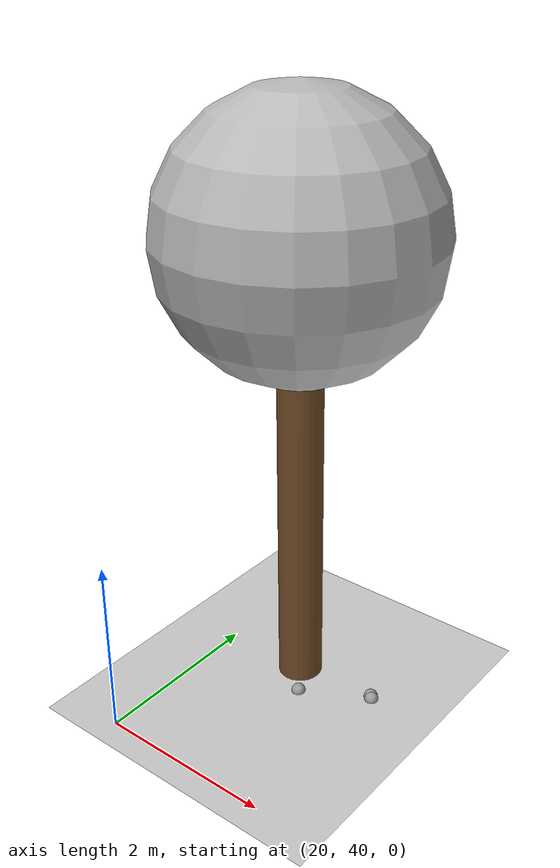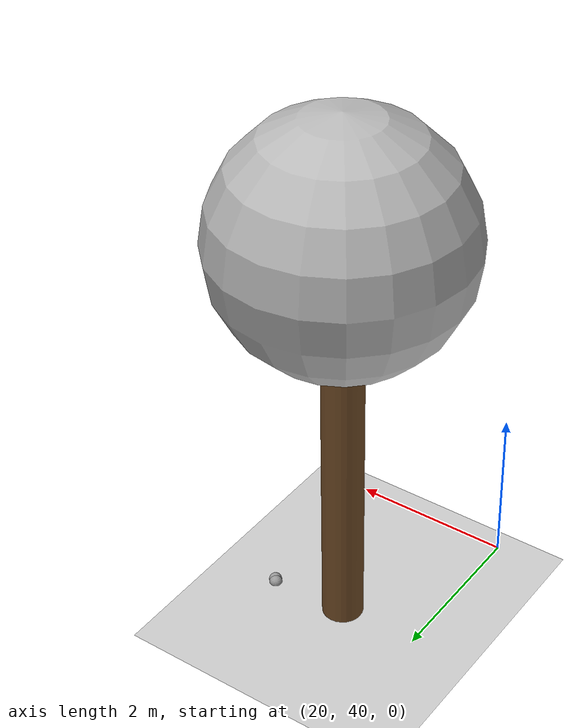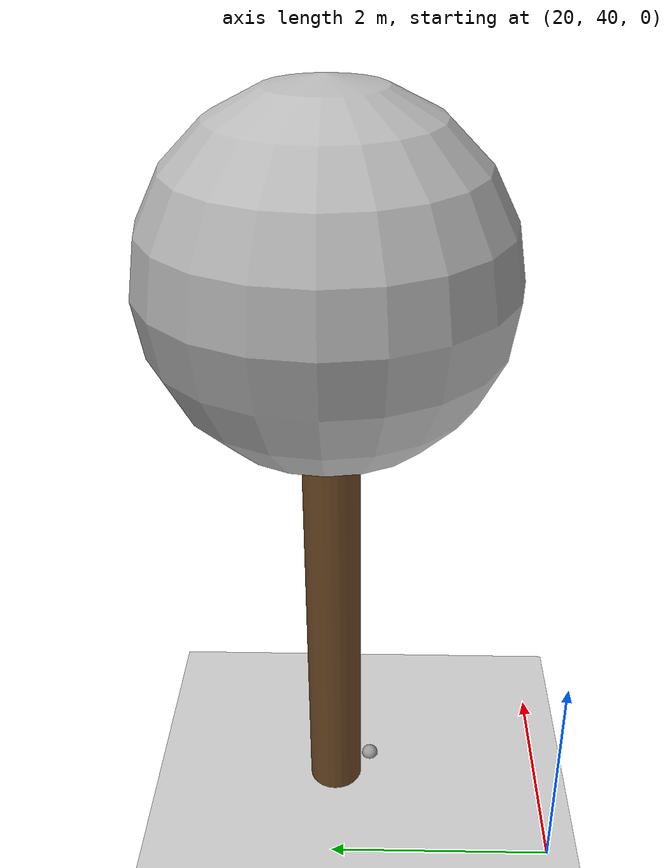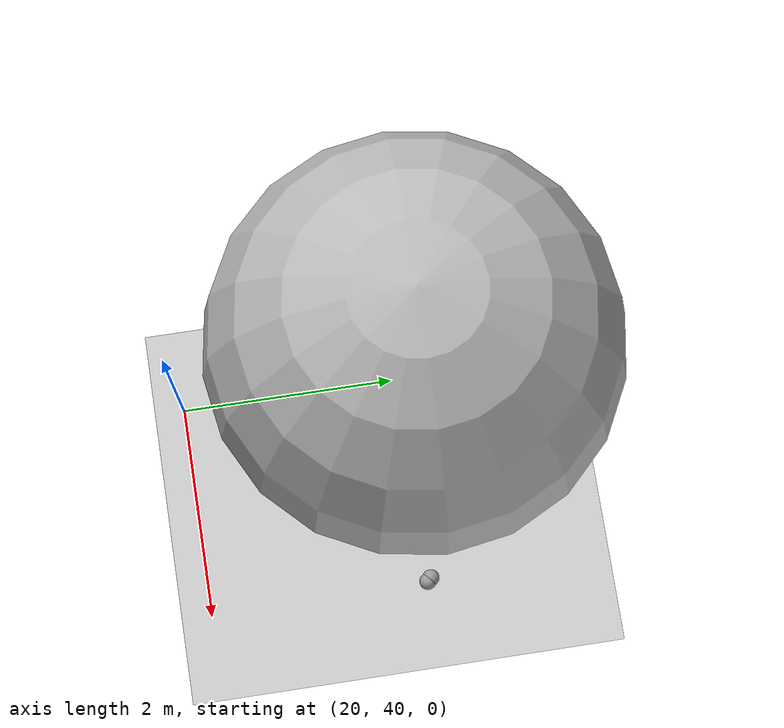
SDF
<sdf version="1.7">
 <world name="default">
  <model name="ground_plane">
   <static>1</static>
   <link name="link">
    <collision name="collision">
     <geometry><plane><normal>0 0 1</normal><size>100 100</size></plane></geometry>
     <surface>
      <contact><collide_bitmask>65535</collide_bitmask></contact>
      <friction><ode><mu>100</mu><mu2>50</mu2></ode></friction>
     </surface>
    </collision>
    <visual name="visual">
     <cast_shadows>0</cast_shadows>
     <geometry><plane><normal>0 0 1</normal><size>100 100</size></plane></geometry>
     <material>
      <script><uri>file://media/materials/scripts/gazebo.material</uri><name>Gazebo/Grey</name></script>
     </material>
    </visual>
   </link>
  </model>
  <model name="tree_simple_13">
   <static>1</static>
   <link name="link">
    <pose>0 0 0.1 0 -0 0</pose>
    <inertial>
     <mass>666</mass>
     <inertia>
      <ixx>0.0861167</ixx>
      <ixy>0</ixy>
      <ixz>0</ixz>
      <iyy>0.0861167</iyy>
      <iyz>0</iyz>
      <izz>0.0861167</izz>
     </inertia>
    </inertial>
    <collision name="collision_trunk">
     <pose>0 0 2 0 -0 0</pose>
     <geometry><cylinder><radius>0.25</radius><length>4</length></cylinder></geometry>
     <surface>
      <contact>
       <poissons_ratio>0.347</poissons_ratio>
       <elastic_modulus>8.8e+09</elastic_modulus>
       <ode><kp>100000</kp><kd>100</kd><max_vel>100</max_vel><min_depth>0.001</min_depth></ode>
      </contact>
      <friction>
       <torsional>
        <coefficient>1</coefficient>
        <use_patch_radius>0</use_patch_radius>
        <surface_radius>0.01</surface_radius>
       </torsional>
      </friction>
     </surface>
    </collision>
    <collision name="collision_treetop">
     <pose>0 0 5.2 0 -0 0</pose>
     <geometry><sphere><radius>1.5</radius></sphere></geometry>
     <surface>
      <contact>
       <poissons_ratio>0.347</poissons_ratio>
       <elastic_modulus>8.8e+09</elastic_modulus>
       <ode><kp>100000</kp><kd>100</kd><max_vel>100</max_vel><min_depth>0.001</min_depth></ode>
      </contact>
      <friction>
       <torsional>
        <coefficient>1</coefficient>
        <use_patch_radius>0</use_patch_radius>
        <surface_radius>0.01</surface_radius>
       </torsional>
      </friction>
     </surface>
    </collision>
    <visual name="trunk">
     <pose>0 0 2 0 -0 0</pose>
     <geometry><cylinder><radius>0.25</radius><length>4</length></cylinder></geometry>
     <material>
      <script>
       <uri>model://tree_simple/scripts</uri>
       <uri>model://tree_simple/materials/textures</uri>
       <name>TreeSimple/Trunk</name>
      </script>
     </material>
    </visual>
    <visual name="treetop">
     <pose>0 0 5.2 0 -0 0</pose>
     <geometry><sphere><radius>1.5</radius></sphere></geometry>
     <material>
      <script>
       <uri>model://tree_simple/scripts</uri>
       <uri>model://tree_simple/materials/textures</uri>
       <name>TreeSimple/Treetop</name>
      </script>
     </material>
    </visual>
   </link>
   <pose>21 42 -0.1 0 -0 0</pose>
  </model>
  <model name="seed_black_2">
   <link name="link">
    <inertial>
     <mass>1</mass>
     <inertia><ixx>0.1</ixx><ixy>0</ixy><ixz>0</ixz><iyy>0.1</iyy><iyz>0</iyz><izz>0.1</izz></inertia>
    </inertial>
    <visual name="visual">
     <geometry><sphere><radius>0.08</radius></sphere></geometry>
     <material>
      <script><name>Gazebo/Grey</name><uri>file://media/materials/scripts/gazebo.material</uri></script>
      <shader type="pixel"><normal_map>__default__</normal_map></shader>
      <ambient>0 0 0 1</ambient>
      <diffuse>0.7 0.7 0.7 1</diffuse>
      <specular>0.01 0.01 0.01 1</specular>
      <emissive>0 0 0 1</emissive>
     </material>
    </visual>
    <collision name="collision">
     <geometry><sphere><radius>0.0005</radius></sphere></geometry>
     <surface>
      <friction>
       <ode><mu>1</mu><mu2>1</mu2><fdir1>0 0 0</fdir1><slip1>0</slip1><slip2>0</slip2></ode>
       <torsional>
        <coefficient>1</coefficient>
        <patch_radius>0</patch_radius>
        <surface_radius>0</surface_radius>
        <use_patch_radius>1</use_patch_radius>
        <ode><slip>0</slip></ode>
       </torsional>
      </friction>
      <bounce><restitution_coefficient>0</restitution_coefficient><threshold>1e+06</threshold></bounce>
      <contact>
       <collide_without_contact>0</collide_without_contact>
       <collide_without_contact_bitmask>1</collide_without_contact_bitmask>
       <collide_bitmask>1</collide_bitmask>
       <ode>
        <soft_cfm>0</soft_cfm>
        <soft_erp>0.2</soft_erp>
        <kp>1e+13</kp>
        <kd>1</kd>
        <max_vel>0.01</max_vel>
        <min_depth>0</min_depth>
       </ode>
       <bullet>
        <split_impulse>1</split_impulse>
        <split_impulse_penetration_threshold>-0.01</split_impulse_penetration_threshold>
        <soft_cfm>0</soft_cfm>
        <soft_erp>0.2</soft_erp>
        <kp>1e+13</kp>
        <kd>1</kd>
       </bullet>
      </contact>
     </surface>
    </collision>
   </link>
   <static>0</static>
   <pose>21.2354 41.6632 0.0005 0 -0 0</pose>
  </model>
  <model name="seed_black_4">
   <link name="link">
    <inertial>
     <mass>1</mass>
     <inertia><ixx>0.1</ixx><ixy>0</ixy><ixz>0</ixz><iyy>0.1</iyy><iyz>0</iyz><izz>0.1</izz></inertia>
    </inertial>
    <visual name="visual">
     <geometry><sphere><radius>0.08</radius></sphere></geometry>
     <material>
      <script><name>Gazebo/Grey</name><uri>file://media/materials/scripts/gazebo.material</uri></script>
      <shader type="pixel"><normal_map>__default__</normal_map></shader>
      <ambient>0 0 0 1</ambient>
      <diffuse>0.7 0.7 0.7 1</diffuse>
      <specular>0.01 0.01 0.01 1</specular>
      <emissive>0 0 0 1</emissive>
     </material>
    </visual>
    <collision name="collision">
     <geometry><sphere><radius>0.0005</radius></sphere></geometry>
     <surface>
      <friction>
       <ode><mu>1</mu><mu2>1</mu2><fdir1>0 0 0</fdir1><slip1>0</slip1><slip2>0</slip2></ode>
       <torsional>
        <coefficient>1</coefficient>
        <patch_radius>0</patch_radius>
        <surface_radius>0</surface_radius>
        <use_patch_radius>1</use_patch_radius>
        <ode><slip>0</slip></ode>
       </torsional>
      </friction>
      <bounce><restitution_coefficient>0</restitution_coefficient><threshold>1e+06</threshold></bounce>
      <contact>
       <collide_without_contact>0</collide_without_contact>
       <collide_without_contact_bitmask>1</collide_without_contact_bitmask>
       <collide_bitmask>1</collide_bitmask>
       <ode>
        <soft_cfm>0</soft_cfm>
        <soft_erp>0.2</soft_erp>
        <kp>1e+13</kp>
        <kd>1</kd>
        <max_vel>0.01</max_vel>
        <min_depth>0</min_depth>
       </ode>
       <bullet>
        <split_impulse>1</split_impulse>
        <split_impulse_penetration_threshold>-0.01</split_impulse_penetration_threshold>
        <soft_cfm>0</soft_cfm>
        <soft_erp>0.2</soft_erp>
        <kp>1e+13</kp>
        <kd>1</kd>
       </bullet>
      </contact>
     </surface>
    </collision>
   </link>
   <static>0</static>
   <pose>21.9441 42.0839 0.0005 0 -0 0</pose>
  </model>
  <model name="seed_black_8">
   <link name="link">
    <inertial>
     <mass>1</mass>
     <inertia><ixx>0.1</ixx><ixy>0</ixy><ixz>0</ixz><iyy>0.1</iyy><iyz>0</iyz><izz>0.1</izz></inertia>
    </inertial>
    <visual name="visual">
     <geometry><sphere><radius>0.08</radius></sphere></geometry>
     <material>
      <script><name>Gazebo/Grey</name><uri>file://media/materials/scripts/gazebo.material</uri></script>
      <shader type="pixel"><normal_map>__default__</normal_map></shader>
      <ambient>0 0 0 1</ambient>
      <diffuse>0.7 0.7 0.7 1</diffuse>
      <specular>0.01 0.01 0.01 1</specular>
      <emissive>0 0 0 1</emissive>
     </material>
    </visual>
    <collision name="collision">
     <geometry><sphere><radius>0.0005</radius></sphere></geometry>
     <surface>
      <friction>
       <ode><mu>1</mu><mu2>1</mu2><fdir1>0 0 0</fdir1><slip1>0</slip1><slip2>0</slip2></ode>
       <torsional>
        <coefficient>1</coefficient>
        <patch_radius>0</patch_radius>
        <surface_radius>0</surface_radius>
        <use_patch_radius>1</use_patch_radius>
        <ode><slip>0</slip></ode>
       </torsional>
      </friction>
      <bounce><restitution_coefficient>0</restitution_coefficient><threshold>1e+06</threshold></bounce>
      <contact>
       <collide_without_contact>0</collide_without_contact>
       <collide_without_contact_bitmask>1</collide_without_contact_bitmask>
       <collide_bitmask>1</collide_bitmask>
       <ode>
        <soft_cfm>0</soft_cfm>
        <soft_erp>0.2</soft_erp>
        <kp>1e+13</kp>
        <kd>1</kd>
        <max_vel>0.01</max_vel>
        <min_depth>0</min_depth>
       </ode>
       <bullet>
        <split_impulse>1</split_impulse>
        <split_impulse_penetration_threshold>-0.01</split_impulse_penetration_threshold>
        <soft_cfm>0</soft_cfm>
        <soft_erp>0.2</soft_erp>
        <kp>1e+13</kp>
        <kd>1</kd>
       </bullet>
      </contact>
     </surface>
    </collision>
   </link>
   <static>0</static>
   <pose>21.9737 42.0521 0.0005 0 -0 0</pose>
  </model>
 </world>
</sdf>
